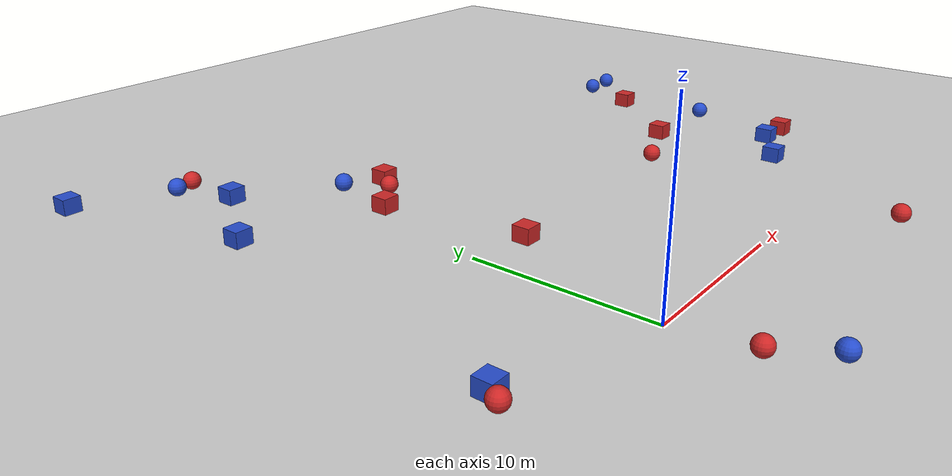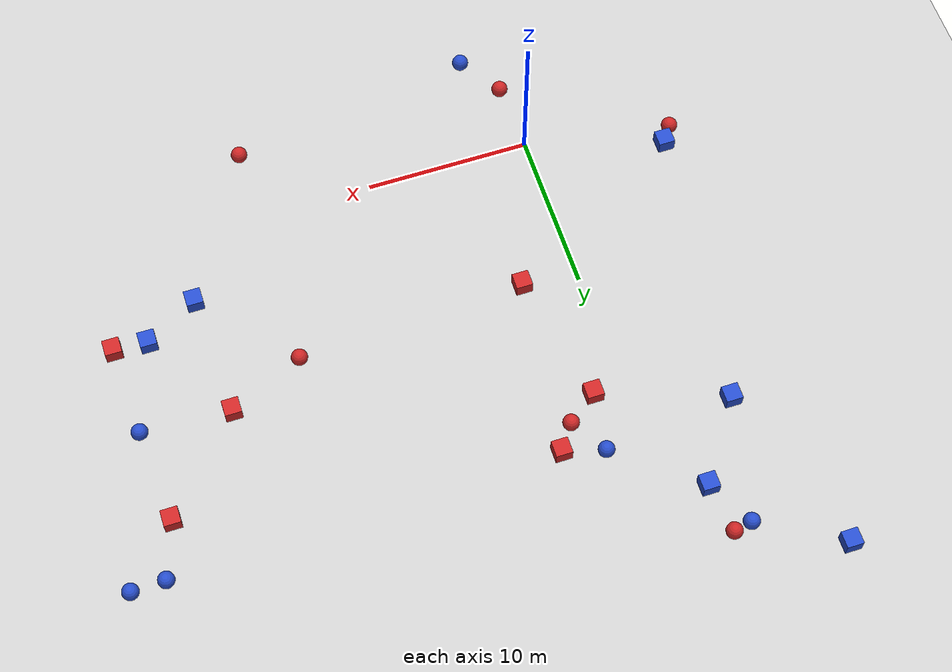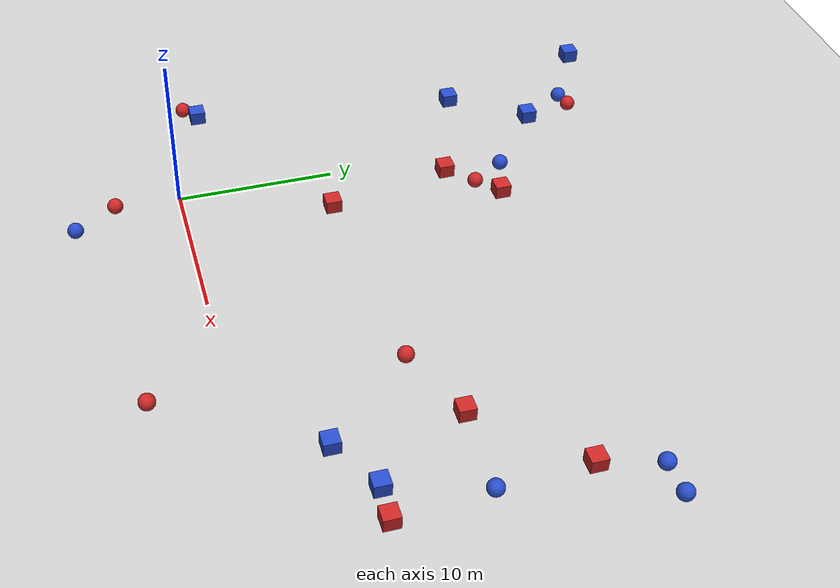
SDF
<sdf version="1.6">
 <world name="default">
  <light name="sun" type="directional">
   <pose>0 0 10 0 -0 0</pose>
   <diffuse>0.8 0.8 0.8 1</diffuse>
   <specular>0.1 0.1 0.1 1</specular>
   <attenuation>
    <range>1000</range>
    <constant>0.9</constant>
    <linear>0.01</linear>
    <quadratic>0.001</quadratic>
   </attenuation>
   <direction>-0.5 0.5 -1</direction>
  </light>
  <model name="ground_plane">
   <static>1</static>
   <link name="link">
    <collision name="collision">
     <geometry><plane><normal>0 0 1</normal><size>100 100</size></plane></geometry>
     <surface><friction><ode><mu>100</mu><mu2>50</mu2></ode></friction></surface>
    </collision>
    <visual name="visual">
     <cast_shadows>0</cast_shadows>
     <geometry><plane><normal>0 0 1</normal><size>100 100</size></plane></geometry>
     <material>
      <script><uri>file://media/materials/scripts/gazebo.material</uri><name>Gazebo/Grey</name></script>
     </material>
    </visual>
   </link>
  </model>
  <model name="unit_box_red_6">
   <pose>1.71582277601 17.3682456467 0.329741 0 -0 0</pose>
   <link name="link">
    <inertial>
     <mass>1</mass>
     <inertia>
      <ixx>0.166667</ixx>
      <ixy>0</ixy>
      <ixz>0</ixz>
      <iyy>0.166667</iyy>
      <iyz>0</iyz>
      <izz>0.166667</izz>
     </inertia>
    </inertial>
    <collision name="collision"><geometry><box><size>1 1 0.999999</size></box></geometry></collision>
    <visual name="visual">
     <geometry><box><size>1 1 0.999999</size></box></geometry>
     <material>
      <script><name>Gazebo/Red</name><uri>file://media/materials/scripts/gazebo.material</uri></script>
     </material>
    </visual>
   </link>
  </model>
  <model name="unit_box_red_5">
   <pose>27.4891426403 6.10659931788 0.329741 0 -0 0</pose>
   <link name="link">
    <inertial>
     <mass>1</mass>
     <inertia>
      <ixx>0.166667</ixx>
      <ixy>0</ixy>
      <ixz>0</ixz>
      <iyy>0.166667</iyy>
      <iyz>0</iyz>
      <izz>0.166667</izz>
     </inertia>
    </inertial>
    <collision name="collision"><geometry><box><size>1 1 0.999999</size></box></geometry></collision>
    <visual name="visual">
     <geometry><box><size>1 1 0.999999</size></box></geometry>
     <material>
      <script><name>Gazebo/Red</name><uri>file://media/materials/scripts/gazebo.material</uri></script>
     </material>
    </visual>
   </link>
  </model>
  <model name="unit_box_red_4">
   <pose>26.7708789744 17.4337327558 0.329741 0 -0 0</pose>
   <link name="link">
    <inertial>
     <mass>1</mass>
     <inertia>
      <ixx>0.166667</ixx>
      <ixy>0</ixy>
      <ixz>0</ixz>
      <iyy>0.166667</iyy>
      <iyz>0</iyz>
      <izz>0.166667</izz>
     </inertia>
    </inertial>
    <collision name="collision"><geometry><box><size>1 1 0.999999</size></box></geometry></collision>
    <visual name="visual">
     <geometry><box><size>1 1 0.999999</size></box></geometry>
     <material>
      <script><name>Gazebo/Red</name><uri>file://media/materials/scripts/gazebo.material</uri></script>
     </material>
    </visual>
   </link>
  </model>
  <model name="unit_box_red_3">
   <pose>3.32757797157 9.32875101318 0.329741 0 -0 0</pose>
   <link name="link">
    <inertial>
     <mass>1</mass>
     <inertia>
      <ixx>0.166667</ixx>
      <ixy>0</ixy>
      <ixz>0</ixz>
      <iyy>0.166667</iyy>
      <iyz>0</iyz>
      <izz>0.166667</izz>
     </inertia>
    </inertial>
    <collision name="collision"><geometry><box><size>1 1 0.999999</size></box></geometry></collision>
    <visual name="visual">
     <geometry><box><size>1 1 0.999999</size></box></geometry>
     <material>
      <script><name>Gazebo/Red</name><uri>file://media/materials/scripts/gazebo.material</uri></script>
     </material>
    </visual>
   </link>
  </model>
  <model name="unit_box_red_2">
   <pose>21.8313842527 11.9750252418 0.329741 0 -0 0</pose>
   <link name="link">
    <inertial>
     <mass>1</mass>
     <inertia>
      <ixx>0.166667</ixx>
      <ixy>0</ixy>
      <ixz>0</ixz>
      <iyy>0.166667</iyy>
      <iyz>0</iyz>
      <izz>0.166667</izz>
     </inertia>
    </inertial>
    <collision name="collision"><geometry><box><size>1 1 0.999999</size></box></geometry></collision>
    <visual name="visual">
     <geometry><box><size>1 1 0.999999</size></box></geometry>
     <material>
      <script><name>Gazebo/Red</name><uri>file://media/materials/scripts/gazebo.material</uri></script>
     </material>
    </visual>
   </link>
  </model>
  <model name="unit_box_red_1">
   <pose>4.65495652853 20.2380144258 0.329741 0 -0 0</pose>
   <link name="link">
    <inertial>
     <mass>1</mass>
     <inertia>
      <ixx>0.166667</ixx>
      <ixy>0</ixy>
      <ixz>0</ixz>
      <iyy>0.166667</iyy>
      <iyz>0</iyz>
      <izz>0.166667</izz>
     </inertia>
    </inertial>
    <collision name="collision"><geometry><box><size>1 1 0.999999</size></box></geometry></collision>
    <visual name="visual">
     <geometry><box><size>1 1 0.999999</size></box></geometry>
     <material>
      <script><name>Gazebo/Red</name><uri>file://media/materials/scripts/gazebo.material</uri></script>
     </material>
    </visual>
   </link>
  </model>
  <model name="unit_sphere_red_6">
   <pose>-2.85906105992 27.8600382183 0.5 0 -0 0</pose>
   <link name="link">
    <inertial>
     <mass>1</mass>
     <inertia><ixx>0.1</ixx><ixy>0</ixy><ixz>0</ixz><iyy>0.1</iyy><iyz>0</iyz><izz>0.1</izz></inertia>
    </inertial>
    <collision name="collision"><geometry><sphere><radius>0.5</radius></sphere></geometry></collision>
    <visual name="visual">
     <geometry><sphere><radius>0.5</radius></sphere></geometry>
     <material>
      <script><name>Gazebo/Red</name><uri>file://media/materials/scripts/gazebo.material</uri></script>
     </material>
    </visual>
   </link>
  </model>
  <model name="unit_sphere_red_5">
   <pose>-8.89867459111 1.68172045952 0.5 0 -0 0</pose>
   <link name="link">
    <inertial>
     <mass>1</mass>
     <inertia><ixx>0.1</ixx><ixy>0</ixy><ixz>0</ixz><iyy>0.1</iyy><iyz>0</iyz><izz>0.1</izz></inertia>
    </inertial>
    <collision name="collision"><geometry><sphere><radius>0.5</radius></sphere></geometry></collision>
    <visual name="visual">
     <geometry><sphere><radius>0.5</radius></sphere></geometry>
     <material>
      <script><name>Gazebo/Red</name><uri>file://media/materials/scripts/gazebo.material</uri></script>
     </material>
    </visual>
   </link>
  </model>
  <model name="unit_sphere_red_4">
   <pose>17.258650105 10.0170608375 0.5 0 -0 0</pose>
   <link name="link">
    <inertial>
     <mass>1</mass>
     <inertia><ixx>0.1</ixx><ixy>0</ixy><ixz>0</ixz><iyy>0.1</iyy><iyz>0</iyz><izz>0.1</izz></inertia>
    </inertial>
    <collision name="collision"><geometry><sphere><radius>0.5</radius></sphere></geometry></collision>
    <visual name="visual">
     <geometry><sphere><radius>0.5</radius></sphere></geometry>
     <material>
      <script><name>Gazebo/Red</name><uri>file://media/materials/scripts/gazebo.material</uri></script>
     </material>
    </visual>
   </link>
  </model>
  <model name="unit_sphere_red_3">
   <pose>0.268892027 -4.12914637864 0.5 0 -0 0</pose>
   <link name="link">
    <inertial>
     <mass>1</mass>
     <inertia><ixx>0.1</ixx><ixy>0</ixy><ixz>0</ixz><iyy>0.1</iyy><iyz>0</iyz><izz>0.1</izz></inertia>
    </inertial>
    <collision name="collision"><geometry><sphere><radius>0.5</radius></sphere></geometry></collision>
    <visual name="visual">
     <geometry><sphere><radius>0.5</radius></sphere></geometry>
     <material>
      <script><name>Gazebo/Red</name><uri>file://media/materials/scripts/gazebo.material</uri></script>
     </material>
    </visual>
   </link>
  </model>
  <model name="unit_sphere_red_2">
   <pose>3.59665047925 18.8345180319 0.5 0 -0 0</pose>
   <link name="link">
    <inertial>
     <mass>1</mass>
     <inertia><ixx>0.1</ixx><ixy>0</ixy><ixz>0</ixz><iyy>0.1</iyy><iyz>0</iyz><izz>0.1</izz></inertia>
    </inertial>
    <collision name="collision"><geometry><sphere><radius>0.5</radius></sphere></geometry></collision>
    <visual name="visual">
     <geometry><sphere><radius>0.5</radius></sphere></geometry>
     <material>
      <script><name>Gazebo/Red</name><uri>file://media/materials/scripts/gazebo.material</uri></script>
     </material>
    </visual>
   </link>
  </model>
  <model name="unit_sphere_red_1">
   <pose>17.051475839 -4.48379234421 0.5 0 -0 0</pose>
   <link name="link">
    <inertial>
     <mass>1</mass>
     <inertia><ixx>0.1</ixx><ixy>0</ixy><ixz>0</ixz><iyy>0.1</iyy><iyz>0</iyz><izz>0.1</izz></inertia>
    </inertial>
    <collision name="collision"><geometry><sphere><radius>0.5</radius></sphere></geometry></collision>
    <visual name="visual">
     <geometry><sphere><radius>0.5</radius></sphere></geometry>
     <material>
      <script><name>Gazebo/Red</name><uri>file://media/materials/scripts/gazebo.material</uri></script>
     </material>
    </visual>
   </link>
  </model>
  <model name="unit_box_blue_6">
   <pose>22.1731996512 4.41450857389 0.329741 0 -0 0</pose>
   <link name="link">
    <inertial>
     <mass>1</mass>
     <inertia>
      <ixx>0.166667</ixx>
      <ixy>0</ixy>
      <ixz>0</ixz>
      <iyy>0.166667</iyy>
      <iyz>0</iyz>
      <izz>0.166667</izz>
     </inertia>
    </inertial>
    <collision name="collision"><geometry><box><size>1 1 0.999999</size></box></geometry></collision>
    <visual name="visual">
     <geometry><box><size>1 1 0.999999</size></box></geometry>
     <material>
      <script><name>Gazebo/Blue</name><uri>file://media/materials/scripts/gazebo.material</uri></script>
     </material>
    </visual>
   </link>
  </model>
  <model name="unit_box_blue_5">
   <pose>-2.54796005779 24.7452781272 0.329741 0 -0 0</pose>
   <link name="link">
    <inertial>
     <mass>1</mass>
     <inertia>
      <ixx>0.166667</ixx>
      <ixy>0</ixy>
      <ixz>0</ixz>
      <iyy>0.166667</iyy>
      <iyz>0</iyz>
      <izz>0.166667</izz>
     </inertia>
    </inertial>
    <collision name="collision"><geometry><box><size>1 1 0.999999</size></box></geometry></collision>
    <visual name="visual">
     <geometry><box><size>1 1 0.999999</size></box></geometry>
     <material>
      <script><name>Gazebo/Blue</name><uri>file://media/materials/scripts/gazebo.material</uri></script>
     </material>
    </visual>
   </link>
  </model>
  <model name="unit_box_blue_4">
   <pose>-8.24298896703 2.55745686931 0.329741 0 -0 0</pose>
   <link name="link">
    <inertial>
     <mass>1</mass>
     <inertia>
      <ixx>0.166667</ixx>
      <ixy>0</ixy>
      <ixz>0</ixz>
      <iyy>0.166667</iyy>
      <iyz>0</iyz>
      <izz>0.166667</izz>
     </inertia>
    </inertial>
    <collision name="collision"><geometry><box><size>1 1 0.999999</size></box></geometry></collision>
    <visual name="visual">
     <geometry><box><size>1 1 0.999999</size></box></geometry>
     <material>
      <script><name>Gazebo/Blue</name><uri>file://media/materials/scripts/gazebo.material</uri></script>
     </material>
    </visual>
   </link>
  </model>
  <model name="unit_box_blue_3">
   <pose>25.4197969021 6.22146382601 0.329741 0 -0 0</pose>
   <link name="link">
    <inertial>
     <mass>1</mass>
     <inertia>
      <ixx>0.166667</ixx>
      <ixy>0</ixy>
      <ixz>0</ixz>
      <iyy>0.166667</iyy>
      <iyz>0</iyz>
      <izz>0.166667</izz>
     </inertia>
    </inertial>
    <collision name="collision"><geometry><box><size>1 1 0.999999</size></box></geometry></collision>
    <visual name="visual">
     <geometry><box><size>1 1 0.999999</size></box></geometry>
     <material>
      <script><name>Gazebo/Blue</name><uri>file://media/materials/scripts/gazebo.material</uri></script>
     </material>
    </visual>
   </link>
  </model>
  <model name="unit_box_blue_2">
   <pose>-8.83834384525 30.3700907198 0.329741 0 -0 0</pose>
   <link name="link">
    <inertial>
     <mass>1</mass>
     <inertia>
      <ixx>0.166667</ixx>
      <ixy>0</ixy>
      <ixz>0</ixz>
      <iyy>0.166667</iyy>
      <iyz>0</iyz>
      <izz>0.166667</izz>
     </inertia>
    </inertial>
    <collision name="collision"><geometry><box><size>1 1 0.999999</size></box></geometry></collision>
    <visual name="visual">
     <geometry><box><size>1 1 0.999999</size></box></geometry>
     <material>
      <script><name>Gazebo/Blue</name><uri>file://media/materials/scripts/gazebo.material</uri></script>
     </material>
    </visual>
   </link>
  </model>
  <model name="unit_box_blue_1">
   <pose>-5.77831339144 20.0527384466 0.329741 0 -0 0</pose>
   <link name="link">
    <inertial>
     <mass>1</mass>
     <inertia>
      <ixx>0.166667</ixx>
      <ixy>0</ixy>
      <ixz>0</ixz>
      <iyy>0.166667</iyy>
      <iyz>0</iyz>
      <izz>0.166667</izz>
     </inertia>
    </inertial>
    <collision name="collision"><geometry><box><size>1 1 0.999999</size></box></geometry></collision>
    <visual name="visual">
     <geometry><box><size>1 1 0.999999</size></box></geometry>
     <material>
      <script><name>Gazebo/Blue</name><uri>file://media/materials/scripts/gazebo.material</uri></script>
     </material>
    </visual>
   </link>
  </model>
  <model name="unit_sphere_blue_6">
   <pose>-3.98522708386 27.626439396 0.5 0 -0 0</pose>
   <link name="link">
    <inertial>
     <mass>1</mass>
     <inertia><ixx>0.1</ixx><ixy>0</ixy><ixz>0</ixz><iyy>0.1</iyy><iyz>0</iyz><izz>0.1</izz></inertia>
    </inertial>
    <collision name="collision"><geometry><sphere><radius>0.5</radius></sphere></geometry></collision>
    <visual name="visual">
     <geometry><sphere><radius>0.5</radius></sphere></geometry>
     <material>
      <script><name>Gazebo/Blue</name><uri>file://media/materials/scripts/gazebo.material</uri></script>
     </material>
    </visual>
   </link>
  </model>
  <model name="unit_sphere_blue_5">
   <pose>2.23675203896 21.0263590802 0.5 0 -0 0</pose>
   <link name="link">
    <inertial>
     <mass>1</mass>
     <inertia><ixx>0.1</ixx><ixy>0</ixy><ixz>0</ixz><iyy>0.1</iyy><iyz>0</iyz><izz>0.1</izz></inertia>
    </inertial>
    <collision name="collision"><geometry><sphere><radius>0.5</radius></sphere></geometry></collision>
    <visual name="visual">
     <geometry><sphere><radius>0.5</radius></sphere></geometry>
     <material>
      <script><name>Gazebo/Blue</name><uri>file://media/materials/scripts/gazebo.material</uri></script>
     </material>
    </visual>
   </link>
  </model>
  <model name="unit_sphere_blue_4">
   <pose>2.00420805341 -6.79322072595 0.5 0 -0 0</pose>
   <link name="link">
    <inertial>
     <mass>1</mass>
     <inertia><ixx>0.1</ixx><ixy>0</ixy><ixz>0</ixz><iyy>0.1</iyy><iyz>0</iyz><izz>0.1</izz></inertia>
    </inertial>
    <collision name="collision"><geometry><sphere><radius>0.5</radius></sphere></geometry></collision>
    <visual name="visual">
     <geometry><sphere><radius>0.5</radius></sphere></geometry>
     <material>
      <script><name>Gazebo/Blue</name><uri>file://media/materials/scripts/gazebo.material</uri></script>
     </material>
    </visual>
   </link>
  </model>
  <model name="unit_sphere_blue_3">
   <pose>27.8926535746 20.8662520683 0.5 0 -0 0</pose>
   <link name="link">
    <inertial>
     <mass>1</mass>
     <inertia><ixx>0.1</ixx><ixy>0</ixy><ixz>0</ixz><iyy>0.1</iyy><iyz>0</iyz><izz>0.1</izz></inertia>
    </inertial>
    <collision name="collision"><geometry><sphere><radius>0.5</radius></sphere></geometry></collision>
    <visual name="visual">
     <geometry><sphere><radius>0.5</radius></sphere></geometry>
     <material>
      <script><name>Gazebo/Blue</name><uri>file://media/materials/scripts/gazebo.material</uri></script>
     </material>
    </visual>
   </link>
  </model>
  <model name="unit_sphere_blue_2">
   <pose>27.2209773814 11.7641501839 0.5 0 -0 0</pose>
   <link name="link">
    <inertial>
     <mass>1</mass>
     <inertia><ixx>0.1</ixx><ixy>0</ixy><ixz>0</ixz><iyy>0.1</iyy><iyz>0</iyz><izz>0.1</izz></inertia>
    </inertial>
    <collision name="collision"><geometry><sphere><radius>0.5</radius></sphere></geometry></collision>
    <visual name="visual">
     <geometry><sphere><radius>0.5</radius></sphere></geometry>
     <material>
      <script><name>Gazebo/Blue</name><uri>file://media/materials/scripts/gazebo.material</uri></script>
     </material>
    </visual>
   </link>
  </model>
  <model name="unit_sphere_blue_1">
   <pose>29.9222301333 20.9205529082 0.5 0 -0 0</pose>
   <link name="link">
    <inertial>
     <mass>1</mass>
     <inertia><ixx>0.1</ixx><ixy>0</ixy><ixz>0</ixz><iyy>0.1</iyy><iyz>0</iyz><izz>0.1</izz></inertia>
    </inertial>
    <collision name="collision"><geometry><sphere><radius>0.5</radius></sphere></geometry></collision>
    <visual name="visual">
     <geometry><sphere><radius>0.5</radius></sphere></geometry>
     <material>
      <script><name>Gazebo/Blue</name><uri>file://media/materials/scripts/gazebo.material</uri></script>
     </material>
    </visual>
   </link>
  </model>
  <gravity>0 0 -9.8</gravity>
  <magnetic_field>6e-06 2.3e-05 -4.2e-05</magnetic_field>
  <atmosphere type="adiabatic"/>
  <physics default="0" name="default_physics" type="ode">
   <max_step_size>0.001</max_step_size>
   <real_time_factor>1</real_time_factor>
   <real_time_update_rate>1000</real_time_update_rate>
  </physics>
  <scene><ambient>0.4 0.4 0.4 1</ambient><background>0.7 0.7 0.7 1</background><shadows>1</shadows></scene>
  <spherical_coordinates>
   <surface_model>EARTH_WGS84</surface_model>
   <latitude_deg>0</latitude_deg>
   <longitude_deg>0</longitude_deg>
   <elevation>0</elevation>
   <heading_deg>0</heading_deg>
  </spherical_coordinates>
 </world>
</sdf>
